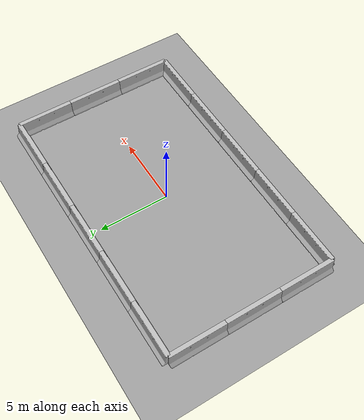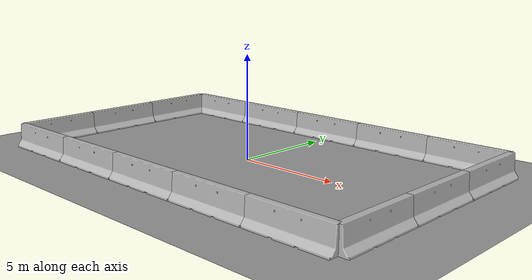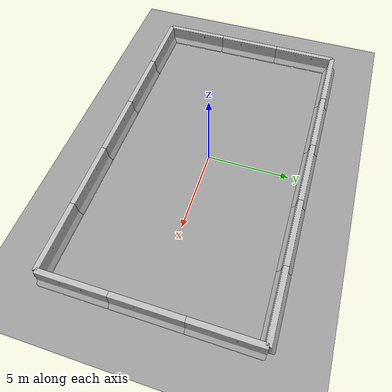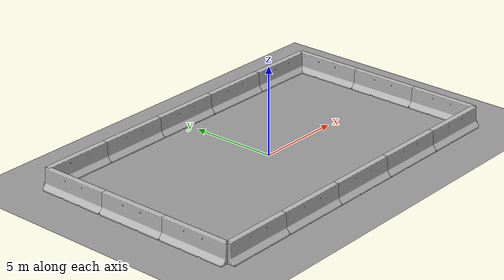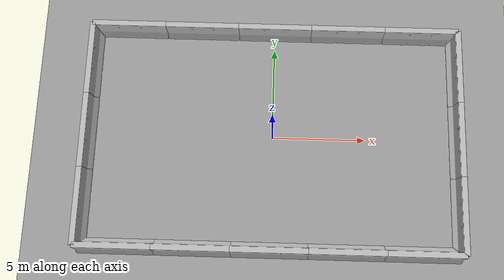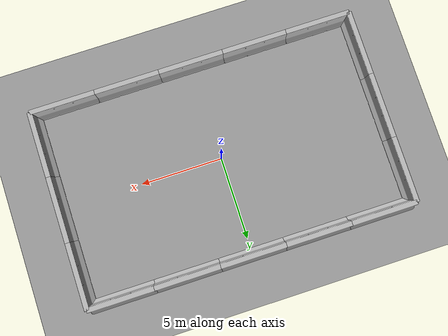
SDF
<sdf version="1.4">
 <world name="default">
  <light name="sun" type="directional">
   <pose>0 0 10 0 -0 0</pose>
   <diffuse>0.8 0.8 0.8 1</diffuse>
   <specular>0.2 0.2 0.2 1</specular>
   <attenuation>
    <range>1000</range>
    <constant>0.9</constant>
    <linear>0.01</linear>
    <quadratic>0.001</quadratic>
   </attenuation>
   <direction>0.5 0.1 -0.9</direction>
  </light>
  <scene><ambient>0.4 0.4 0.4 1</ambient><background>0.7 0.7 0.7 1</background><shadows>1</shadows></scene>
  <physics type="ode">
   <max_step_size>0.01</max_step_size>
   <real_time_factor>1</real_time_factor>
   <real_time_update_rate>100</real_time_update_rate>
   <gravity>0 0 -9.8</gravity>
  </physics>
  <model name="jersey_barrier_0">
   <static>1</static>
   <link name="link">
    <visual name="visual">
     <geometry><mesh><uri>model://jersey_barrier/meshes/jersey_barrier.dae</uri></mesh></geometry>
    </visual>
    <collision name="upright">
     <pose>0 0 0.5715 0 -0 0</pose>
     <geometry><box><size>4.06542 0.3063 1.143</size></box></geometry>
    </collision>
    <collision name="base">
     <pose>0 0 0.032258 0 -0 0</pose>
     <geometry><box><size>4.06542 0.8107 0.064516</size></box></geometry>
    </collision>
    <collision name="base2">
     <pose>0 0 0.1 0 -0 0</pose>
     <geometry><box><size>4.06542 0.65 0.1</size></box></geometry>
    </collision>
    <collision name="base3">
     <pose>0 0 0.2 0 -0 0</pose>
     <geometry><box><size>4.06542 0.5 0.1</size></box></geometry>
    </collision>
    <collision name="left-angle">
     <pose>0 -0.224 0.2401 0.9 -0 0</pose>
     <geometry><box><size>4.06542 0.5 0.064516</size></box></geometry>
    </collision>
    <collision name="right-angle">
     <pose>0 0.224 0.2401 -0.9 0 0</pose>
     <geometry><box><size>4.06542 0.5 0.064516</size></box></geometry>
    </collision>
    <velocity_decay><linear>0</linear><angular>0</angular></velocity_decay>
   </link>
   <pose>-8 -6 0 0 0 0</pose>
  </model>
  <model name="jersey_barrier_1">
   <static>1</static>
   <link name="link">
    <visual name="visual">
     <geometry><mesh><uri>model://jersey_barrier/meshes/jersey_barrier.dae</uri></mesh></geometry>
    </visual>
    <collision name="upright">
     <pose>0 0 0.5715 0 -0 0</pose>
     <geometry><box><size>4.06542 0.3063 1.143</size></box></geometry>
    </collision>
    <collision name="base">
     <pose>0 0 0.032258 0 -0 0</pose>
     <geometry><box><size>4.06542 0.8107 0.064516</size></box></geometry>
    </collision>
    <collision name="base2">
     <pose>0 0 0.1 0 -0 0</pose>
     <geometry><box><size>4.06542 0.65 0.1</size></box></geometry>
    </collision>
    <collision name="base3">
     <pose>0 0 0.2 0 -0 0</pose>
     <geometry><box><size>4.06542 0.5 0.1</size></box></geometry>
    </collision>
    <collision name="left-angle">
     <pose>0 -0.224 0.2401 0.9 -0 0</pose>
     <geometry><box><size>4.06542 0.5 0.064516</size></box></geometry>
    </collision>
    <collision name="right-angle">
     <pose>0 0.224 0.2401 -0.9 0 0</pose>
     <geometry><box><size>4.06542 0.5 0.064516</size></box></geometry>
    </collision>
    <velocity_decay><linear>0</linear><angular>0</angular></velocity_decay>
   </link>
   <pose>-4 -6 0 0 0 0</pose>
  </model>
  <model name="jersey_barrier_2">
   <static>1</static>
   <link name="link">
    <visual name="visual">
     <geometry><mesh><uri>model://jersey_barrier/meshes/jersey_barrier.dae</uri></mesh></geometry>
    </visual>
    <collision name="upright">
     <pose>0 0 0.5715 0 -0 0</pose>
     <geometry><box><size>4.06542 0.3063 1.143</size></box></geometry>
    </collision>
    <collision name="base">
     <pose>0 0 0.032258 0 -0 0</pose>
     <geometry><box><size>4.06542 0.8107 0.064516</size></box></geometry>
    </collision>
    <collision name="base2">
     <pose>0 0 0.1 0 -0 0</pose>
     <geometry><box><size>4.06542 0.65 0.1</size></box></geometry>
    </collision>
    <collision name="base3">
     <pose>0 0 0.2 0 -0 0</pose>
     <geometry><box><size>4.06542 0.5 0.1</size></box></geometry>
    </collision>
    <collision name="left-angle">
     <pose>0 -0.224 0.2401 0.9 -0 0</pose>
     <geometry><box><size>4.06542 0.5 0.064516</size></box></geometry>
    </collision>
    <collision name="right-angle">
     <pose>0 0.224 0.2401 -0.9 0 0</pose>
     <geometry><box><size>4.06542 0.5 0.064516</size></box></geometry>
    </collision>
    <velocity_decay><linear>0</linear><angular>0</angular></velocity_decay>
   </link>
   <pose>0 -6 0 0 0 0</pose>
  </model>
  <model name="jersey_barrier_3">
   <static>1</static>
   <link name="link">
    <visual name="visual">
     <geometry><mesh><uri>model://jersey_barrier/meshes/jersey_barrier.dae</uri></mesh></geometry>
    </visual>
    <collision name="upright">
     <pose>0 0 0.5715 0 -0 0</pose>
     <geometry><box><size>4.06542 0.3063 1.143</size></box></geometry>
    </collision>
    <collision name="base">
     <pose>0 0 0.032258 0 -0 0</pose>
     <geometry><box><size>4.06542 0.8107 0.064516</size></box></geometry>
    </collision>
    <collision name="base2">
     <pose>0 0 0.1 0 -0 0</pose>
     <geometry><box><size>4.06542 0.65 0.1</size></box></geometry>
    </collision>
    <collision name="base3">
     <pose>0 0 0.2 0 -0 0</pose>
     <geometry><box><size>4.06542 0.5 0.1</size></box></geometry>
    </collision>
    <collision name="left-angle">
     <pose>0 -0.224 0.2401 0.9 -0 0</pose>
     <geometry><box><size>4.06542 0.5 0.064516</size></box></geometry>
    </collision>
    <collision name="right-angle">
     <pose>0 0.224 0.2401 -0.9 0 0</pose>
     <geometry><box><size>4.06542 0.5 0.064516</size></box></geometry>
    </collision>
    <velocity_decay><linear>0</linear><angular>0</angular></velocity_decay>
   </link>
   <pose>4 -6 0 0 0 0</pose>
  </model>
  <model name="jersey_barrier_4">
   <static>1</static>
   <link name="link">
    <visual name="visual">
     <geometry><mesh><uri>model://jersey_barrier/meshes/jersey_barrier.dae</uri></mesh></geometry>
    </visual>
    <collision name="upright">
     <pose>0 0 0.5715 0 -0 0</pose>
     <geometry><box><size>4.06542 0.3063 1.143</size></box></geometry>
    </collision>
    <collision name="base">
     <pose>0 0 0.032258 0 -0 0</pose>
     <geometry><box><size>4.06542 0.8107 0.064516</size></box></geometry>
    </collision>
    <collision name="base2">
     <pose>0 0 0.1 0 -0 0</pose>
     <geometry><box><size>4.06542 0.65 0.1</size></box></geometry>
    </collision>
    <collision name="base3">
     <pose>0 0 0.2 0 -0 0</pose>
     <geometry><box><size>4.06542 0.5 0.1</size></box></geometry>
    </collision>
    <collision name="left-angle">
     <pose>0 -0.224 0.2401 0.9 -0 0</pose>
     <geometry><box><size>4.06542 0.5 0.064516</size></box></geometry>
    </collision>
    <collision name="right-angle">
     <pose>0 0.224 0.2401 -0.9 0 0</pose>
     <geometry><box><size>4.06542 0.5 0.064516</size></box></geometry>
    </collision>
    <velocity_decay><linear>0</linear><angular>0</angular></velocity_decay>
   </link>
   <pose>8 -6 0 0 0 0</pose>
  </model>
  <model name="jersey_barrier_5">
   <static>1</static>
   <link name="link">
    <visual name="visual">
     <geometry><mesh><uri>model://jersey_barrier/meshes/jersey_barrier.dae</uri></mesh></geometry>
    </visual>
    <collision name="upright">
     <pose>0 0 0.5715 0 -0 0</pose>
     <geometry><box><size>4.06542 0.3063 1.143</size></box></geometry>
    </collision>
    <collision name="base">
     <pose>0 0 0.032258 0 -0 0</pose>
     <geometry><box><size>4.06542 0.8107 0.064516</size></box></geometry>
    </collision>
    <collision name="base2">
     <pose>0 0 0.1 0 -0 0</pose>
     <geometry><box><size>4.06542 0.65 0.1</size></box></geometry>
    </collision>
    <collision name="base3">
     <pose>0 0 0.2 0 -0 0</pose>
     <geometry><box><size>4.06542 0.5 0.1</size></box></geometry>
    </collision>
    <collision name="left-angle">
     <pose>0 -0.224 0.2401 0.9 -0 0</pose>
     <geometry><box><size>4.06542 0.5 0.064516</size></box></geometry>
    </collision>
    <collision name="right-angle">
     <pose>0 0.224 0.2401 -0.9 0 0</pose>
     <geometry><box><size>4.06542 0.5 0.064516</size></box></geometry>
    </collision>
    <velocity_decay><linear>0</linear><angular>0</angular></velocity_decay>
   </link>
   <pose>10 -4 0 0 0 1.57079</pose>
  </model>
  <model name="jersey_barrier_6">
   <static>1</static>
   <link name="link">
    <visual name="visual">
     <geometry><mesh><uri>model://jersey_barrier/meshes/jersey_barrier.dae</uri></mesh></geometry>
    </visual>
    <collision name="upright">
     <pose>0 0 0.5715 0 -0 0</pose>
     <geometry><box><size>4.06542 0.3063 1.143</size></box></geometry>
    </collision>
    <collision name="base">
     <pose>0 0 0.032258 0 -0 0</pose>
     <geometry><box><size>4.06542 0.8107 0.064516</size></box></geometry>
    </collision>
    <collision name="base2">
     <pose>0 0 0.1 0 -0 0</pose>
     <geometry><box><size>4.06542 0.65 0.1</size></box></geometry>
    </collision>
    <collision name="base3">
     <pose>0 0 0.2 0 -0 0</pose>
     <geometry><box><size>4.06542 0.5 0.1</size></box></geometry>
    </collision>
    <collision name="left-angle">
     <pose>0 -0.224 0.2401 0.9 -0 0</pose>
     <geometry><box><size>4.06542 0.5 0.064516</size></box></geometry>
    </collision>
    <collision name="right-angle">
     <pose>0 0.224 0.2401 -0.9 0 0</pose>
     <geometry><box><size>4.06542 0.5 0.064516</size></box></geometry>
    </collision>
    <velocity_decay><linear>0</linear><angular>0</angular></velocity_decay>
   </link>
   <pose>10 0 0 0 0 1.57079</pose>
  </model>
  <model name="jersey_barrier_7">
   <static>1</static>
   <link name="link">
    <visual name="visual">
     <geometry><mesh><uri>model://jersey_barrier/meshes/jersey_barrier.dae</uri></mesh></geometry>
    </visual>
    <collision name="upright">
     <pose>0 0 0.5715 0 -0 0</pose>
     <geometry><box><size>4.06542 0.3063 1.143</size></box></geometry>
    </collision>
    <collision name="base">
     <pose>0 0 0.032258 0 -0 0</pose>
     <geometry><box><size>4.06542 0.8107 0.064516</size></box></geometry>
    </collision>
    <collision name="base2">
     <pose>0 0 0.1 0 -0 0</pose>
     <geometry><box><size>4.06542 0.65 0.1</size></box></geometry>
    </collision>
    <collision name="base3">
     <pose>0 0 0.2 0 -0 0</pose>
     <geometry><box><size>4.06542 0.5 0.1</size></box></geometry>
    </collision>
    <collision name="left-angle">
     <pose>0 -0.224 0.2401 0.9 -0 0</pose>
     <geometry><box><size>4.06542 0.5 0.064516</size></box></geometry>
    </collision>
    <collision name="right-angle">
     <pose>0 0.224 0.2401 -0.9 0 0</pose>
     <geometry><box><size>4.06542 0.5 0.064516</size></box></geometry>
    </collision>
    <velocity_decay><linear>0</linear><angular>0</angular></velocity_decay>
   </link>
   <pose>10 4 0 0 0 1.57079</pose>
  </model>
  <model name="jersey_barrier_8">
   <static>1</static>
   <link name="link">
    <visual name="visual">
     <geometry><mesh><uri>model://jersey_barrier/meshes/jersey_barrier.dae</uri></mesh></geometry>
    </visual>
    <collision name="upright">
     <pose>0 0 0.5715 0 -0 0</pose>
     <geometry><box><size>4.06542 0.3063 1.143</size></box></geometry>
    </collision>
    <collision name="base">
     <pose>0 0 0.032258 0 -0 0</pose>
     <geometry><box><size>4.06542 0.8107 0.064516</size></box></geometry>
    </collision>
    <collision name="base2">
     <pose>0 0 0.1 0 -0 0</pose>
     <geometry><box><size>4.06542 0.65 0.1</size></box></geometry>
    </collision>
    <collision name="base3">
     <pose>0 0 0.2 0 -0 0</pose>
     <geometry><box><size>4.06542 0.5 0.1</size></box></geometry>
    </collision>
    <collision name="left-angle">
     <pose>0 -0.224 0.2401 0.9 -0 0</pose>
     <geometry><box><size>4.06542 0.5 0.064516</size></box></geometry>
    </collision>
    <collision name="right-angle">
     <pose>0 0.224 0.2401 -0.9 0 0</pose>
     <geometry><box><size>4.06542 0.5 0.064516</size></box></geometry>
    </collision>
    <velocity_decay><linear>0</linear><angular>0</angular></velocity_decay>
   </link>
   <pose>8 6 0 0 0 0</pose>
  </model>
  <model name="jersey_barrier_9">
   <static>1</static>
   <link name="link">
    <visual name="visual">
     <geometry><mesh><uri>model://jersey_barrier/meshes/jersey_barrier.dae</uri></mesh></geometry>
    </visual>
    <collision name="upright">
     <pose>0 0 0.5715 0 -0 0</pose>
     <geometry><box><size>4.06542 0.3063 1.143</size></box></geometry>
    </collision>
    <collision name="base">
     <pose>0 0 0.032258 0 -0 0</pose>
     <geometry><box><size>4.06542 0.8107 0.064516</size></box></geometry>
    </collision>
    <collision name="base2">
     <pose>0 0 0.1 0 -0 0</pose>
     <geometry><box><size>4.06542 0.65 0.1</size></box></geometry>
    </collision>
    <collision name="base3">
     <pose>0 0 0.2 0 -0 0</pose>
     <geometry><box><size>4.06542 0.5 0.1</size></box></geometry>
    </collision>
    <collision name="left-angle">
     <pose>0 -0.224 0.2401 0.9 -0 0</pose>
     <geometry><box><size>4.06542 0.5 0.064516</size></box></geometry>
    </collision>
    <collision name="right-angle">
     <pose>0 0.224 0.2401 -0.9 0 0</pose>
     <geometry><box><size>4.06542 0.5 0.064516</size></box></geometry>
    </collision>
    <velocity_decay><linear>0</linear><angular>0</angular></velocity_decay>
   </link>
   <pose>4 6 0 0 0 0</pose>
  </model>
  <model name="jersey_barrier_10">
   <static>1</static>
   <link name="link">
    <visual name="visual">
     <geometry><mesh><uri>model://jersey_barrier/meshes/jersey_barrier.dae</uri></mesh></geometry>
    </visual>
    <collision name="upright">
     <pose>0 0 0.5715 0 -0 0</pose>
     <geometry><box><size>4.06542 0.3063 1.143</size></box></geometry>
    </collision>
    <collision name="base">
     <pose>0 0 0.032258 0 -0 0</pose>
     <geometry><box><size>4.06542 0.8107 0.064516</size></box></geometry>
    </collision>
    <collision name="base2">
     <pose>0 0 0.1 0 -0 0</pose>
     <geometry><box><size>4.06542 0.65 0.1</size></box></geometry>
    </collision>
    <collision name="base3">
     <pose>0 0 0.2 0 -0 0</pose>
     <geometry><box><size>4.06542 0.5 0.1</size></box></geometry>
    </collision>
    <collision name="left-angle">
     <pose>0 -0.224 0.2401 0.9 -0 0</pose>
     <geometry><box><size>4.06542 0.5 0.064516</size></box></geometry>
    </collision>
    <collision name="right-angle">
     <pose>0 0.224 0.2401 -0.9 0 0</pose>
     <geometry><box><size>4.06542 0.5 0.064516</size></box></geometry>
    </collision>
    <velocity_decay><linear>0</linear><angular>0</angular></velocity_decay>
   </link>
   <pose>0 6 0 0 0 0</pose>
  </model>
  <model name="jersey_barrier_11">
   <static>1</static>
   <link name="link">
    <visual name="visual">
     <geometry><mesh><uri>model://jersey_barrier/meshes/jersey_barrier.dae</uri></mesh></geometry>
    </visual>
    <collision name="upright">
     <pose>0 0 0.5715 0 -0 0</pose>
     <geometry><box><size>4.06542 0.3063 1.143</size></box></geometry>
    </collision>
    <collision name="base">
     <pose>0 0 0.032258 0 -0 0</pose>
     <geometry><box><size>4.06542 0.8107 0.064516</size></box></geometry>
    </collision>
    <collision name="base2">
     <pose>0 0 0.1 0 -0 0</pose>
     <geometry><box><size>4.06542 0.65 0.1</size></box></geometry>
    </collision>
    <collision name="base3">
     <pose>0 0 0.2 0 -0 0</pose>
     <geometry><box><size>4.06542 0.5 0.1</size></box></geometry>
    </collision>
    <collision name="left-angle">
     <pose>0 -0.224 0.2401 0.9 -0 0</pose>
     <geometry><box><size>4.06542 0.5 0.064516</size></box></geometry>
    </collision>
    <collision name="right-angle">
     <pose>0 0.224 0.2401 -0.9 0 0</pose>
     <geometry><box><size>4.06542 0.5 0.064516</size></box></geometry>
    </collision>
    <velocity_decay><linear>0</linear><angular>0</angular></velocity_decay>
   </link>
   <pose>-4 6 0 0 0 0</pose>
  </model>
  <model name="jersey_barrier_12">
   <static>1</static>
   <link name="link">
    <visual name="visual">
     <geometry><mesh><uri>model://jersey_barrier/meshes/jersey_barrier.dae</uri></mesh></geometry>
    </visual>
    <collision name="upright">
     <pose>0 0 0.5715 0 -0 0</pose>
     <geometry><box><size>4.06542 0.3063 1.143</size></box></geometry>
    </collision>
    <collision name="base">
     <pose>0 0 0.032258 0 -0 0</pose>
     <geometry><box><size>4.06542 0.8107 0.064516</size></box></geometry>
    </collision>
    <collision name="base2">
     <pose>0 0 0.1 0 -0 0</pose>
     <geometry><box><size>4.06542 0.65 0.1</size></box></geometry>
    </collision>
    <collision name="base3">
     <pose>0 0 0.2 0 -0 0</pose>
     <geometry><box><size>4.06542 0.5 0.1</size></box></geometry>
    </collision>
    <collision name="left-angle">
     <pose>0 -0.224 0.2401 0.9 -0 0</pose>
     <geometry><box><size>4.06542 0.5 0.064516</size></box></geometry>
    </collision>
    <collision name="right-angle">
     <pose>0 0.224 0.2401 -0.9 0 0</pose>
     <geometry><box><size>4.06542 0.5 0.064516</size></box></geometry>
    </collision>
    <velocity_decay><linear>0</linear><angular>0</angular></velocity_decay>
   </link>
   <pose>-8 6 0 0 0 0</pose>
  </model>
  <model name="jersey_barrier_13">
   <static>1</static>
   <link name="link">
    <visual name="visual">
     <geometry><mesh><uri>model://jersey_barrier/meshes/jersey_barrier.dae</uri></mesh></geometry>
    </visual>
    <collision name="upright">
     <pose>0 0 0.5715 0 -0 0</pose>
     <geometry><box><size>4.06542 0.3063 1.143</size></box></geometry>
    </collision>
    <collision name="base">
     <pose>0 0 0.032258 0 -0 0</pose>
     <geometry><box><size>4.06542 0.8107 0.064516</size></box></geometry>
    </collision>
    <collision name="base2">
     <pose>0 0 0.1 0 -0 0</pose>
     <geometry><box><size>4.06542 0.65 0.1</size></box></geometry>
    </collision>
    <collision name="base3">
     <pose>0 0 0.2 0 -0 0</pose>
     <geometry><box><size>4.06542 0.5 0.1</size></box></geometry>
    </collision>
    <collision name="left-angle">
     <pose>0 -0.224 0.2401 0.9 -0 0</pose>
     <geometry><box><size>4.06542 0.5 0.064516</size></box></geometry>
    </collision>
    <collision name="right-angle">
     <pose>0 0.224 0.2401 -0.9 0 0</pose>
     <geometry><box><size>4.06542 0.5 0.064516</size></box></geometry>
    </collision>
    <velocity_decay><linear>0</linear><angular>0</angular></velocity_decay>
   </link>
   <pose>-10 4 0 0 0 1.57079</pose>
  </model>
  <model name="jersey_barrier_14">
   <static>1</static>
   <link name="link">
    <visual name="visual">
     <geometry><mesh><uri>model://jersey_barrier/meshes/jersey_barrier.dae</uri></mesh></geometry>
    </visual>
    <collision name="upright">
     <pose>0 0 0.5715 0 -0 0</pose>
     <geometry><box><size>4.06542 0.3063 1.143</size></box></geometry>
    </collision>
    <collision name="base">
     <pose>0 0 0.032258 0 -0 0</pose>
     <geometry><box><size>4.06542 0.8107 0.064516</size></box></geometry>
    </collision>
    <collision name="base2">
     <pose>0 0 0.1 0 -0 0</pose>
     <geometry><box><size>4.06542 0.65 0.1</size></box></geometry>
    </collision>
    <collision name="base3">
     <pose>0 0 0.2 0 -0 0</pose>
     <geometry><box><size>4.06542 0.5 0.1</size></box></geometry>
    </collision>
    <collision name="left-angle">
     <pose>0 -0.224 0.2401 0.9 -0 0</pose>
     <geometry><box><size>4.06542 0.5 0.064516</size></box></geometry>
    </collision>
    <collision name="right-angle">
     <pose>0 0.224 0.2401 -0.9 0 0</pose>
     <geometry><box><size>4.06542 0.5 0.064516</size></box></geometry>
    </collision>
    <velocity_decay><linear>0</linear><angular>0</angular></velocity_decay>
   </link>
   <pose>-10 0 0 0 0 1.57079</pose>
  </model>
  <model name="jersey_barrier_15">
   <static>1</static>
   <link name="link">
    <visual name="visual">
     <geometry><mesh><uri>model://jersey_barrier/meshes/jersey_barrier.dae</uri></mesh></geometry>
    </visual>
    <collision name="upright">
     <pose>0 0 0.5715 0 -0 0</pose>
     <geometry><box><size>4.06542 0.3063 1.143</size></box></geometry>
    </collision>
    <collision name="base">
     <pose>0 0 0.032258 0 -0 0</pose>
     <geometry><box><size>4.06542 0.8107 0.064516</size></box></geometry>
    </collision>
    <collision name="base2">
     <pose>0 0 0.1 0 -0 0</pose>
     <geometry><box><size>4.06542 0.65 0.1</size></box></geometry>
    </collision>
    <collision name="base3">
     <pose>0 0 0.2 0 -0 0</pose>
     <geometry><box><size>4.06542 0.5 0.1</size></box></geometry>
    </collision>
    <collision name="left-angle">
     <pose>0 -0.224 0.2401 0.9 -0 0</pose>
     <geometry><box><size>4.06542 0.5 0.064516</size></box></geometry>
    </collision>
    <collision name="right-angle">
     <pose>0 0.224 0.2401 -0.9 0 0</pose>
     <geometry><box><size>4.06542 0.5 0.064516</size></box></geometry>
    </collision>
    <velocity_decay><linear>0</linear><angular>0</angular></velocity_decay>
   </link>
   <pose>-10 -4 0 0 0 1.57079</pose>
  </model>
  <model name="ground_plane_0">
   <static>1</static>
   <link name="link">
    <collision name="collision">
     <geometry><plane><normal>0 0 1</normal><size>100 100</size></plane></geometry>
     <surface><friction><ode><mu>700</mu><mu2>500</mu2></ode></friction></surface>
    </collision>
    <visual name="visual">
     <cast_shadows>0</cast_shadows>
     <geometry><plane><normal>0 0 1</normal><size>100 100</size></plane></geometry>
     <material>
      <script><uri>file://media/materials/scripts/gazebo.material</uri><name>Gazebo/Grey</name></script>
     </material>
    </visual>
    <velocity_decay><linear>0</linear><angular>0</angular></velocity_decay>
   </link>
   <pose>0.497681 0 0 0 -0 0</pose>
  </model>
 </world>
</sdf>
